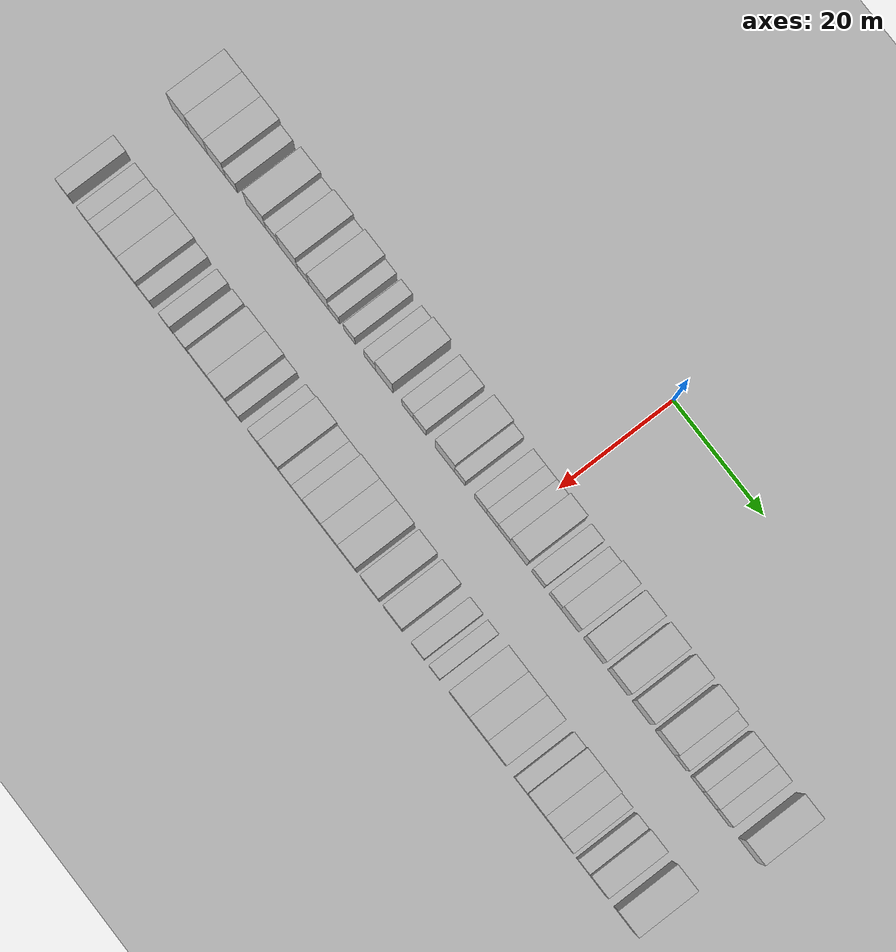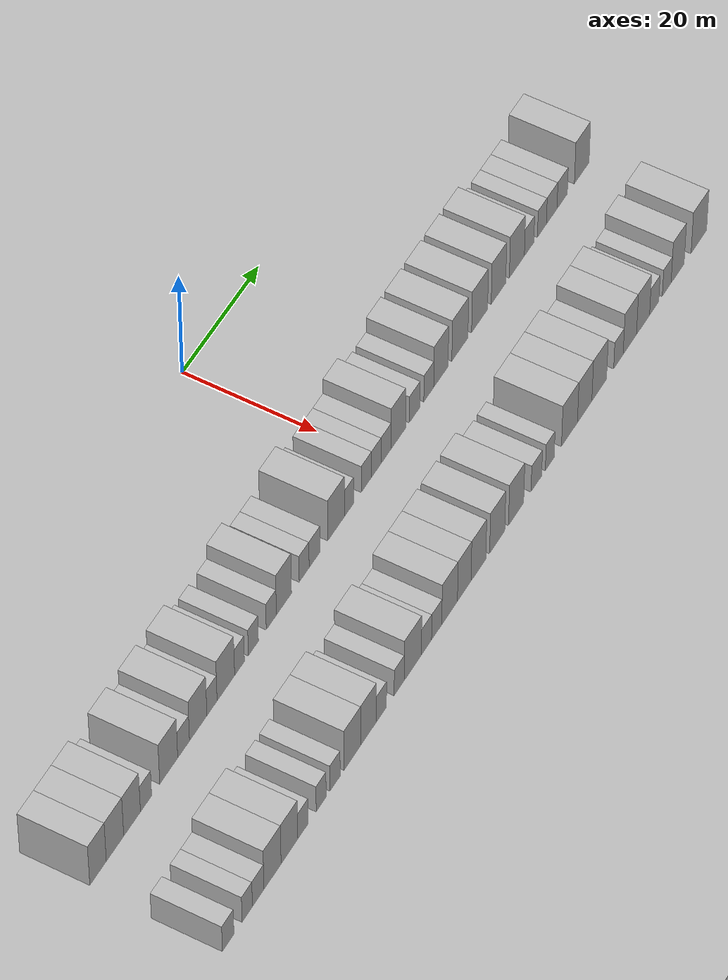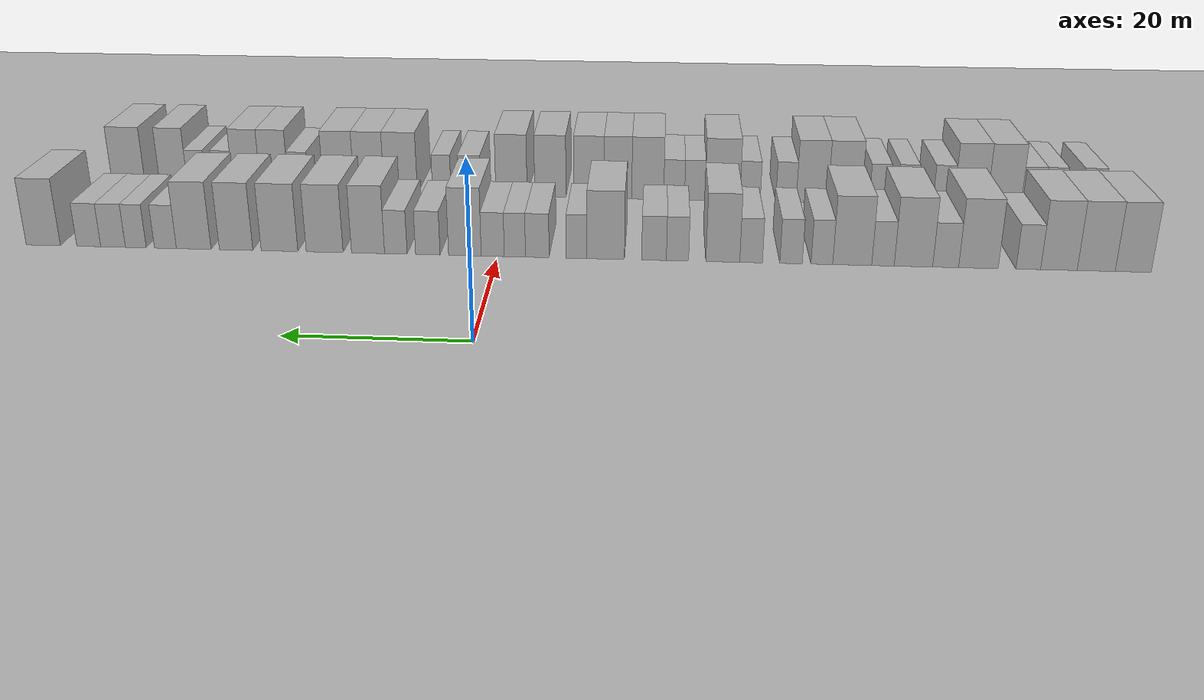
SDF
<sdf version="1.6">
 <world name="default">
  <include><name>ground_plane_1</name><uri>model://HANNAS_ground_plane</uri></include>
  <include>
   <name>ground_plane_2</name>
   <uri>model://HANNAS_ground_plane</uri>
   <pose>100 0 0  0 0 0</pose>
  </include>
  <model name="building_34">
   <static>1</static>
   <pose>25.0000 -72.7724 0 0.000000 0.000000 0.000000</pose>
   <link name="link">
    <pose>0 0 4.50 0 0 0</pose>
    <collision name="collision"><geometry><box><size>10.0000 4.0040 9.0000</size></box></geometry></collision>
    <visual name="visual">
     <cast_shadows>0</cast_shadows>
     <geometry><box><size>10.0000 4.0040 9.0000</size></box></geometry>
     <material>
      <script>
       <uri>model://HANNAS_wall/materials/scripts</uri>
       <uri>model://HANNAS_wall/materials/textures</uri>
       <name>vrc/HANNAS_wall</name>
      </script>
     </material>
    </visual>
   </link>
  </model>
  <model name="building_35">
   <static>1</static>
   <pose>25.0000 -68.6466 0 0.000000 0.000000 0.000000</pose>
   <link name="link">
    <pose>0 0 4.50 0 0 0</pose>
    <collision name="collision"><geometry><box><size>10.0000 4.2477 9.0000</size></box></geometry></collision>
    <visual name="visual">
     <cast_shadows>0</cast_shadows>
     <geometry><box><size>10.0000 4.2477 9.0000</size></box></geometry>
     <material>
      <script>
       <uri>model://HANNAS_wall/materials/scripts</uri>
       <uri>model://HANNAS_wall/materials/textures</uri>
       <name>vrc/HANNAS_wall</name>
      </script>
     </material>
    </visual>
   </link>
  </model>
  <model name="building_36">
   <static>1</static>
   <pose>25.0000 -64.4709 0 0.000000 0.000000 0.000000</pose>
   <link name="link">
    <pose>0 0 4.50 0 0 0</pose>
    <collision name="collision"><geometry><box><size>10.0000 4.1037 9.0000</size></box></geometry></collision>
    <visual name="visual">
     <cast_shadows>0</cast_shadows>
     <geometry><box><size>10.0000 4.1037 9.0000</size></box></geometry>
     <material>
      <script>
       <uri>model://HANNAS_wall/materials/scripts</uri>
       <uri>model://HANNAS_wall/materials/textures</uri>
       <name>vrc/HANNAS_wall</name>
      </script>
     </material>
    </visual>
   </link>
  </model>
  <model name="building_37">
   <static>1</static>
   <pose>25.0000 -61.0392 0 0.000000 0.000000 0.000000</pose>
   <link name="link">
    <pose>0 0 3.00 0 0 0</pose>
    <collision name="collision"><geometry><box><size>10.0000 2.7598 6.0000</size></box></geometry></collision>
    <visual name="visual">
     <cast_shadows>0</cast_shadows>
     <geometry><box><size>10.0000 2.7598 6.0000</size></box></geometry>
     <material>
      <script>
       <uri>model://HANNAS_wall/materials/scripts</uri>
       <uri>model://HANNAS_wall/materials/textures</uri>
       <name>vrc/HANNAS_wall</name>
      </script>
     </material>
    </visual>
   </link>
  </model>
  <model name="building_38">
   <static>1</static>
   <pose>25.0000 -55.4257 0 0.000000 0.000000 0.000000</pose>
   <link name="link">
    <pose>0 0 4.50 0 0 0</pose>
    <collision name="collision"><geometry><box><size>10.0000 4.4671 9.0000</size></box></geometry></collision>
    <visual name="visual">
     <cast_shadows>0</cast_shadows>
     <geometry><box><size>10.0000 4.4671 9.0000</size></box></geometry>
     <material>
      <script>
       <uri>model://HANNAS_wall/materials/scripts</uri>
       <uri>model://HANNAS_wall/materials/textures</uri>
       <name>vrc/HANNAS_wall</name>
      </script>
     </material>
    </visual>
   </link>
  </model>
  <model name="building_39">
   <static>1</static>
   <pose>25.0000 -51.7245 0 0.000000 0.000000 0.000000</pose>
   <link name="link">
    <pose>0 0 3.00 0 0 0</pose>
    <collision name="collision"><geometry><box><size>10.0000 2.9353 6.0000</size></box></geometry></collision>
    <visual name="visual">
     <cast_shadows>0</cast_shadows>
     <geometry><box><size>10.0000 2.9353 6.0000</size></box></geometry>
     <material>
      <script>
       <uri>model://HANNAS_wall/materials/scripts</uri>
       <uri>model://HANNAS_wall/materials/textures</uri>
       <name>vrc/HANNAS_wall</name>
      </script>
     </material>
    </visual>
   </link>
  </model>
  <model name="building_40">
   <static>1</static>
   <pose>25.0000 -48.0767 0 0.000000 0.000000 0.000000</pose>
   <link name="link">
    <pose>0 0 4.50 0 0 0</pose>
    <collision name="collision"><geometry><box><size>10.0000 4.3602 9.0000</size></box></geometry></collision>
    <visual name="visual">
     <cast_shadows>0</cast_shadows>
     <geometry><box><size>10.0000 4.3602 9.0000</size></box></geometry>
     <material>
      <script>
       <uri>model://HANNAS_wall/materials/scripts</uri>
       <uri>model://HANNAS_wall/materials/textures</uri>
       <name>vrc/HANNAS_wall</name>
      </script>
     </material>
    </visual>
   </link>
  </model>
  <model name="building_41">
   <static>1</static>
   <pose>25.0000 -44.6150 0 0.000000 0.000000 0.000000</pose>
   <link name="link">
    <pose>0 0 3.00 0 0 0</pose>
    <collision name="collision"><geometry><box><size>10.0000 2.5633 6.0000</size></box></geometry></collision>
    <visual name="visual">
     <cast_shadows>0</cast_shadows>
     <geometry><box><size>10.0000 2.5633 6.0000</size></box></geometry>
     <material>
      <script>
       <uri>model://HANNAS_wall/materials/scripts</uri>
       <uri>model://HANNAS_wall/materials/textures</uri>
       <name>vrc/HANNAS_wall</name>
      </script>
     </material>
    </visual>
   </link>
  </model>
  <model name="building_42">
   <static>1</static>
   <pose>25.0000 -41.1133 0 0.000000 0.000000 0.000000</pose>
   <link name="link">
    <pose>0 0 4.50 0 0 0</pose>
    <collision name="collision"><geometry><box><size>10.0000 4.4400 9.0000</size></box></geometry></collision>
    <visual name="visual">
     <cast_shadows>0</cast_shadows>
     <geometry><box><size>10.0000 4.4400 9.0000</size></box></geometry>
     <material>
      <script>
       <uri>model://HANNAS_wall/materials/scripts</uri>
       <uri>model://HANNAS_wall/materials/textures</uri>
       <name>vrc/HANNAS_wall</name>
      </script>
     </material>
    </visual>
   </link>
  </model>
  <model name="building_43">
   <static>1</static>
   <pose>25.0000 -37.6530 0 0.000000 0.000000 0.000000</pose>
   <link name="link">
    <pose>0 0 3.00 0 0 0</pose>
    <collision name="collision"><geometry><box><size>10.0000 2.4807 6.0000</size></box></geometry></collision>
    <visual name="visual">
     <cast_shadows>0</cast_shadows>
     <geometry><box><size>10.0000 2.4807 6.0000</size></box></geometry>
     <material>
      <script>
       <uri>model://HANNAS_wall/materials/scripts</uri>
       <uri>model://HANNAS_wall/materials/textures</uri>
       <name>vrc/HANNAS_wall</name>
      </script>
     </material>
    </visual>
   </link>
  </model>
  <model name="building_44">
   <static>1</static>
   <pose>25.0000 -34.1270 0 0.000000 0.000000 0.000000</pose>
   <link name="link">
    <pose>0 0 3.00 0 0 0</pose>
    <collision name="collision"><geometry><box><size>10.0000 2.5712 6.0000</size></box></geometry></collision>
    <visual name="visual">
     <cast_shadows>0</cast_shadows>
     <geometry><box><size>10.0000 2.5712 6.0000</size></box></geometry>
     <material>
      <script>
       <uri>model://HANNAS_wall/materials/scripts</uri>
       <uri>model://HANNAS_wall/materials/textures</uri>
       <name>vrc/HANNAS_wall</name>
      </script>
     </material>
    </visual>
   </link>
  </model>
  <model name="building_45">
   <static>1</static>
   <pose>25.0000 -29.5381 0 0.000000 0.000000 0.000000</pose>
   <link name="link">
    <pose>0 0 3.00 0 0 0</pose>
    <collision name="collision"><geometry><box><size>10.0000 2.6066 6.0000</size></box></geometry></collision>
    <visual name="visual">
     <cast_shadows>0</cast_shadows>
     <geometry><box><size>10.0000 2.6066 6.0000</size></box></geometry>
     <material>
      <script>
       <uri>model://HANNAS_wall/materials/scripts</uri>
       <uri>model://HANNAS_wall/materials/textures</uri>
       <name>vrc/HANNAS_wall</name>
      </script>
     </material>
    </visual>
   </link>
  </model>
  <model name="building_46">
   <static>1</static>
   <pose>25.0000 -26.2901 0 0.000000 0.000000 0.000000</pose>
   <link name="link">
    <pose>0 0 4.50 0 0 0</pose>
    <collision name="collision"><geometry><box><size>10.0000 3.8896 9.0000</size></box></geometry></collision>
    <visual name="visual">
     <cast_shadows>0</cast_shadows>
     <geometry><box><size>10.0000 3.8896 9.0000</size></box></geometry>
     <material>
      <script>
       <uri>model://HANNAS_wall/materials/scripts</uri>
       <uri>model://HANNAS_wall/materials/textures</uri>
       <name>vrc/HANNAS_wall</name>
      </script>
     </material>
    </visual>
   </link>
  </model>
  <model name="building_47">
   <static>1</static>
   <pose>25.0000 -21.0578 0 0.000000 0.000000 0.000000</pose>
   <link name="link">
    <pose>0 0 3.00 0 0 0</pose>
    <collision name="collision"><geometry><box><size>10.0000 2.5750 6.0000</size></box></geometry></collision>
    <visual name="visual">
     <cast_shadows>0</cast_shadows>
     <geometry><box><size>10.0000 2.5750 6.0000</size></box></geometry>
     <material>
      <script>
       <uri>model://HANNAS_wall/materials/scripts</uri>
       <uri>model://HANNAS_wall/materials/textures</uri>
       <name>vrc/HANNAS_wall</name>
      </script>
     </material>
    </visual>
   </link>
  </model>
  <model name="building_48">
   <static>1</static>
   <pose>25.0000 -18.3398 0 0.000000 0.000000 0.000000</pose>
   <link name="link">
    <pose>0 0 3.00 0 0 0</pose>
    <collision name="collision"><geometry><box><size>10.0000 2.8611 6.0000</size></box></geometry></collision>
    <visual name="visual">
     <cast_shadows>0</cast_shadows>
     <geometry><box><size>10.0000 2.8611 6.0000</size></box></geometry>
     <material>
      <script>
       <uri>model://HANNAS_wall/materials/scripts</uri>
       <uri>model://HANNAS_wall/materials/textures</uri>
       <name>vrc/HANNAS_wall</name>
      </script>
     </material>
    </visual>
   </link>
  </model>
  <model name="building_49">
   <static>1</static>
   <pose>25.0000 -12.7190 0 0.000000 0.000000 0.000000</pose>
   <link name="link">
    <pose>0 0 4.50 0 0 0</pose>
    <collision name="collision"><geometry><box><size>10.0000 4.3804 9.0000</size></box></geometry></collision>
    <visual name="visual">
     <cast_shadows>0</cast_shadows>
     <geometry><box><size>10.0000 4.3804 9.0000</size></box></geometry>
     <material>
      <script>
       <uri>model://HANNAS_wall/materials/scripts</uri>
       <uri>model://HANNAS_wall/materials/textures</uri>
       <name>vrc/HANNAS_wall</name>
      </script>
     </material>
    </visual>
   </link>
  </model>
  <model name="building_50">
   <static>1</static>
   <pose>25.0000 -9.3267 0 0.000000 0.000000 0.000000</pose>
   <link name="link">
    <pose>0 0 3.00 0 0 0</pose>
    <collision name="collision"><geometry><box><size>10.0000 2.4043 6.0000</size></box></geometry></collision>
    <visual name="visual">
     <cast_shadows>0</cast_shadows>
     <geometry><box><size>10.0000 2.4043 6.0000</size></box></geometry>
     <material>
      <script>
       <uri>model://HANNAS_wall/materials/scripts</uri>
       <uri>model://HANNAS_wall/materials/textures</uri>
       <name>vrc/HANNAS_wall</name>
      </script>
     </material>
    </visual>
   </link>
  </model>
  <model name="building_51">
   <static>1</static>
   <pose>25.0000 -4.7424 0 0.000000 0.000000 0.000000</pose>
   <link name="link">
    <pose>0 0 3.00 0 0 0</pose>
    <collision name="collision"><geometry><box><size>10.0000 2.7642 6.0000</size></box></geometry></collision>
    <visual name="visual">
     <cast_shadows>0</cast_shadows>
     <geometry><box><size>10.0000 2.7642 6.0000</size></box></geometry>
     <material>
      <script>
       <uri>model://HANNAS_wall/materials/scripts</uri>
       <uri>model://HANNAS_wall/materials/textures</uri>
       <name>vrc/HANNAS_wall</name>
      </script>
     </material>
    </visual>
   </link>
  </model>
  <model name="building_52">
   <static>1</static>
   <pose>25.0000 -2.1201 0 0.000000 0.000000 0.000000</pose>
   <link name="link">
    <pose>0 0 3.00 0 0 0</pose>
    <collision name="collision"><geometry><box><size>10.0000 2.4804 6.0000</size></box></geometry></collision>
    <visual name="visual">
     <cast_shadows>0</cast_shadows>
     <geometry><box><size>10.0000 2.4804 6.0000</size></box></geometry>
     <material>
      <script>
       <uri>model://HANNAS_wall/materials/scripts</uri>
       <uri>model://HANNAS_wall/materials/textures</uri>
       <name>vrc/HANNAS_wall</name>
      </script>
     </material>
    </visual>
   </link>
  </model>
  <model name="building_53">
   <static>1</static>
   <pose>25.0000 0.4747 0 0.000000 0.000000 0.000000</pose>
   <link name="link">
    <pose>0 0 3.00 0 0 0</pose>
    <collision name="collision"><geometry><box><size>10.0000 2.7091 6.0000</size></box></geometry></collision>
    <visual name="visual">
     <cast_shadows>0</cast_shadows>
     <geometry><box><size>10.0000 2.7091 6.0000</size></box></geometry>
     <material>
      <script>
       <uri>model://HANNAS_wall/materials/scripts</uri>
       <uri>model://HANNAS_wall/materials/textures</uri>
       <name>vrc/HANNAS_wall</name>
      </script>
     </material>
    </visual>
   </link>
  </model>
  <model name="building_54">
   <static>1</static>
   <pose>25.0000 3.7525 0 0.000000 0.000000 0.000000</pose>
   <link name="link">
    <pose>0 0 4.50 0 0 0</pose>
    <collision name="collision"><geometry><box><size>10.0000 3.8465 9.0000</size></box></geometry></collision>
    <visual name="visual">
     <cast_shadows>0</cast_shadows>
     <geometry><box><size>10.0000 3.8465 9.0000</size></box></geometry>
     <material>
      <script>
       <uri>model://HANNAS_wall/materials/scripts</uri>
       <uri>model://HANNAS_wall/materials/textures</uri>
       <name>vrc/HANNAS_wall</name>
      </script>
     </material>
    </visual>
   </link>
  </model>
  <model name="building_55">
   <static>1</static>
   <pose>25.0000 8.1223 0 0.000000 0.000000 0.000000</pose>
   <link name="link">
    <pose>0 0 3.00 0 0 0</pose>
    <collision name="collision"><geometry><box><size>10.0000 2.8932 6.0000</size></box></geometry></collision>
    <visual name="visual">
     <cast_shadows>0</cast_shadows>
     <geometry><box><size>10.0000 2.8932 6.0000</size></box></geometry>
     <material>
      <script>
       <uri>model://HANNAS_wall/materials/scripts</uri>
       <uri>model://HANNAS_wall/materials/textures</uri>
       <name>vrc/HANNAS_wall</name>
      </script>
     </material>
    </visual>
   </link>
  </model>
  <model name="building_56">
   <static>1</static>
   <pose>25.0000 11.9050 0 0.000000 0.000000 0.000000</pose>
   <link name="link">
    <pose>0 0 3.00 0 0 0</pose>
    <collision name="collision"><geometry><box><size>10.0000 2.6722 6.0000</size></box></geometry></collision>
    <visual name="visual">
     <cast_shadows>0</cast_shadows>
     <geometry><box><size>10.0000 2.6722 6.0000</size></box></geometry>
     <material>
      <script>
       <uri>model://HANNAS_wall/materials/scripts</uri>
       <uri>model://HANNAS_wall/materials/textures</uri>
       <name>vrc/HANNAS_wall</name>
      </script>
     </material>
    </visual>
   </link>
  </model>
  <model name="building_57">
   <static>1</static>
   <pose>25.0000 15.2048 0 0.000000 0.000000 0.000000</pose>
   <link name="link">
    <pose>0 0 4.50 0 0 0</pose>
    <collision name="collision"><geometry><box><size>10.0000 3.9273 9.0000</size></box></geometry></collision>
    <visual name="visual">
     <cast_shadows>0</cast_shadows>
     <geometry><box><size>10.0000 3.9273 9.0000</size></box></geometry>
     <material>
      <script>
       <uri>model://HANNAS_wall/materials/scripts</uri>
       <uri>model://HANNAS_wall/materials/textures</uri>
       <name>vrc/HANNAS_wall</name>
      </script>
     </material>
    </visual>
   </link>
  </model>
  <model name="building_58">
   <static>1</static>
   <pose>25.0000 20.3662 0 0.000000 0.000000 0.000000</pose>
   <link name="link">
    <pose>0 0 4.50 0 0 0</pose>
    <collision name="collision"><geometry><box><size>10.0000 4.3956 9.0000</size></box></geometry></collision>
    <visual name="visual">
     <cast_shadows>0</cast_shadows>
     <geometry><box><size>10.0000 4.3956 9.0000</size></box></geometry>
     <material>
      <script>
       <uri>model://HANNAS_wall/materials/scripts</uri>
       <uri>model://HANNAS_wall/materials/textures</uri>
       <name>vrc/HANNAS_wall</name>
      </script>
     </material>
    </visual>
   </link>
  </model>
  <model name="building_59">
   <static>1</static>
   <pose>25.0000 25.7597 0 0.000000 0.000000 0.000000</pose>
   <link name="link">
    <pose>0 0 4.50 0 0 0</pose>
    <collision name="collision"><geometry><box><size>10.0000 4.3914 9.0000</size></box></geometry></collision>
    <visual name="visual">
     <cast_shadows>0</cast_shadows>
     <geometry><box><size>10.0000 4.3914 9.0000</size></box></geometry>
     <material>
      <script>
       <uri>model://HANNAS_wall/materials/scripts</uri>
       <uri>model://HANNAS_wall/materials/textures</uri>
       <name>vrc/HANNAS_wall</name>
      </script>
     </material>
    </visual>
   </link>
  </model>
  <model name="building_60">
   <static>1</static>
   <pose>25.0000 30.9667 0 0.000000 0.000000 0.000000</pose>
   <link name="link">
    <pose>0 0 4.50 0 0 0</pose>
    <collision name="collision"><geometry><box><size>10.0000 4.0226 9.0000</size></box></geometry></collision>
    <visual name="visual">
     <cast_shadows>0</cast_shadows>
     <geometry><box><size>10.0000 4.0226 9.0000</size></box></geometry>
     <material>
      <script>
       <uri>model://HANNAS_wall/materials/scripts</uri>
       <uri>model://HANNAS_wall/materials/textures</uri>
       <name>vrc/HANNAS_wall</name>
      </script>
     </material>
    </visual>
   </link>
  </model>
  <model name="building_61">
   <static>1</static>
   <pose>25.0000 36.0708 0 0.000000 0.000000 0.000000</pose>
   <link name="link">
    <pose>0 0 4.50 0 0 0</pose>
    <collision name="collision"><geometry><box><size>10.0000 4.1858 9.0000</size></box></geometry></collision>
    <visual name="visual">
     <cast_shadows>0</cast_shadows>
     <geometry><box><size>10.0000 4.1858 9.0000</size></box></geometry>
     <material>
      <script>
       <uri>model://HANNAS_wall/materials/scripts</uri>
       <uri>model://HANNAS_wall/materials/textures</uri>
       <name>vrc/HANNAS_wall</name>
      </script>
     </material>
    </visual>
   </link>
  </model>
  <model name="building_62">
   <static>1</static>
   <pose>25.0000 39.4881 0 0.000000 0.000000 0.000000</pose>
   <link name="link">
    <pose>0 0 3.00 0 0 0</pose>
    <collision name="collision"><geometry><box><size>10.0000 2.6488 6.0000</size></box></geometry></collision>
    <visual name="visual">
     <cast_shadows>0</cast_shadows>
     <geometry><box><size>10.0000 2.6488 6.0000</size></box></geometry>
     <material>
      <script>
       <uri>model://HANNAS_wall/materials/scripts</uri>
       <uri>model://HANNAS_wall/materials/textures</uri>
       <name>vrc/HANNAS_wall</name>
      </script>
     </material>
    </visual>
   </link>
  </model>
  <model name="building_63">
   <static>1</static>
   <pose>25.0000 43.0726 0 0.000000 0.000000 0.000000</pose>
   <link name="link">
    <pose>0 0 3.00 0 0 0</pose>
    <collision name="collision"><geometry><box><size>10.0000 2.5201 6.0000</size></box></geometry></collision>
    <visual name="visual">
     <cast_shadows>0</cast_shadows>
     <geometry><box><size>10.0000 2.5201 6.0000</size></box></geometry>
     <material>
      <script>
       <uri>model://HANNAS_wall/materials/scripts</uri>
       <uri>model://HANNAS_wall/materials/textures</uri>
       <name>vrc/HANNAS_wall</name>
      </script>
     </material>
    </visual>
   </link>
  </model>
  <model name="building_64">
   <static>1</static>
   <pose>25.0000 45.8305 0 0.000000 0.000000 0.000000</pose>
   <link name="link">
    <pose>0 0 3.00 0 0 0</pose>
    <collision name="collision"><geometry><box><size>10.0000 2.9956 6.0000</size></box></geometry></collision>
    <visual name="visual">
     <cast_shadows>0</cast_shadows>
     <geometry><box><size>10.0000 2.9956 6.0000</size></box></geometry>
     <material>
      <script>
       <uri>model://HANNAS_wall/materials/scripts</uri>
       <uri>model://HANNAS_wall/materials/textures</uri>
       <name>vrc/HANNAS_wall</name>
      </script>
     </material>
    </visual>
   </link>
  </model>
  <model name="building_65">
   <static>1</static>
   <pose>25.0000 48.7820 0 0.000000 0.000000 0.000000</pose>
   <link name="link">
    <pose>0 0 3.00 0 0 0</pose>
    <collision name="collision"><geometry><box><size>10.0000 2.9074 6.0000</size></box></geometry></collision>
    <visual name="visual">
     <cast_shadows>0</cast_shadows>
     <geometry><box><size>10.0000 2.9074 6.0000</size></box></geometry>
     <material>
      <script>
       <uri>model://HANNAS_wall/materials/scripts</uri>
       <uri>model://HANNAS_wall/materials/textures</uri>
       <name>vrc/HANNAS_wall</name>
      </script>
     </material>
    </visual>
   </link>
  </model>
  <model name="building_66">
   <static>1</static>
   <pose>25.0000 54.3205 0 0.000000 0.000000 0.000000</pose>
   <link name="link">
    <pose>0 0 4.50 0 0 0</pose>
    <collision name="collision"><geometry><box><size>10.0000 4.1696 9.0000</size></box></geometry></collision>
    <visual name="visual">
     <cast_shadows>0</cast_shadows>
     <geometry><box><size>10.0000 4.1696 9.0000</size></box></geometry>
     <material>
      <script>
       <uri>model://HANNAS_wall/materials/scripts</uri>
       <uri>model://HANNAS_wall/materials/textures</uri>
       <name>vrc/HANNAS_wall</name>
      </script>
     </material>
    </visual>
   </link>
  </model>
  <model name="building_133">
   <static>1</static>
   <pose>44.0000 -73.8379 0 0.000000 0.000000 0.000000</pose>
   <link name="link">
    <pose>0 0 3.00 0 0 0</pose>
    <collision name="collision"><geometry><box><size>10.0000 2.8449 6.0000</size></box></geometry></collision>
    <visual name="visual">
     <cast_shadows>0</cast_shadows>
     <geometry><box><size>10.0000 2.8449 6.0000</size></box></geometry>
     <material>
      <script>
       <uri>model://HANNAS_wall/materials/scripts</uri>
       <uri>model://HANNAS_wall/materials/textures</uri>
       <name>vrc/HANNAS_wall</name>
      </script>
     </material>
    </visual>
   </link>
  </model>
  <model name="building_134">
   <static>1</static>
   <pose>44.0000 -69.1358 0 0.000000 0.000000 0.000000</pose>
   <link name="link">
    <pose>0 0 3.00 0 0 0</pose>
    <collision name="collision"><geometry><box><size>10.0000 2.5591 6.0000</size></box></geometry></collision>
    <visual name="visual">
     <cast_shadows>0</cast_shadows>
     <geometry><box><size>10.0000 2.5591 6.0000</size></box></geometry>
     <material>
      <script>
       <uri>model://HANNAS_wall/materials/scripts</uri>
       <uri>model://HANNAS_wall/materials/textures</uri>
       <name>vrc/HANNAS_wall</name>
      </script>
     </material>
    </visual>
   </link>
  </model>
  <model name="building_135">
   <static>1</static>
   <pose>44.0000 -66.4230 0 0.000000 0.000000 0.000000</pose>
   <link name="link">
    <pose>0 0 3.00 0 0 0</pose>
    <collision name="collision"><geometry><box><size>10.0000 2.8665 6.0000</size></box></geometry></collision>
    <visual name="visual">
     <cast_shadows>0</cast_shadows>
     <geometry><box><size>10.0000 2.8665 6.0000</size></box></geometry>
     <material>
      <script>
       <uri>model://HANNAS_wall/materials/scripts</uri>
       <uri>model://HANNAS_wall/materials/textures</uri>
       <name>vrc/HANNAS_wall</name>
      </script>
     </material>
    </visual>
   </link>
  </model>
  <model name="building_136">
   <static>1</static>
   <pose>44.0000 -62.8533 0 0.000000 0.000000 0.000000</pose>
   <link name="link">
    <pose>0 0 4.50 0 0 0</pose>
    <collision name="collision"><geometry><box><size>10.0000 4.2729 9.0000</size></box></geometry></collision>
    <visual name="visual">
     <cast_shadows>0</cast_shadows>
     <geometry><box><size>10.0000 4.2729 9.0000</size></box></geometry>
     <material>
      <script>
       <uri>model://HANNAS_wall/materials/scripts</uri>
       <uri>model://HANNAS_wall/materials/textures</uri>
       <name>vrc/HANNAS_wall</name>
      </script>
     </material>
    </visual>
   </link>
  </model>
  <model name="building_137">
   <static>1</static>
   <pose>44.0000 -58.6171 0 0.000000 0.000000 0.000000</pose>
   <link name="link">
    <pose>0 0 4.50 0 0 0</pose>
    <collision name="collision"><geometry><box><size>10.0000 4.1994 9.0000</size></box></geometry></collision>
    <visual name="visual">
     <cast_shadows>0</cast_shadows>
     <geometry><box><size>10.0000 4.1994 9.0000</size></box></geometry>
     <material>
      <script>
       <uri>model://HANNAS_wall/materials/scripts</uri>
       <uri>model://HANNAS_wall/materials/textures</uri>
       <name>vrc/HANNAS_wall</name>
      </script>
     </material>
    </visual>
   </link>
  </model>
  <model name="building_138">
   <static>1</static>
   <pose>44.0000 -55.1983 0 0.000000 0.000000 0.000000</pose>
   <link name="link">
    <pose>0 0 3.00 0 0 0</pose>
    <collision name="collision"><geometry><box><size>10.0000 2.6381 6.0000</size></box></geometry></collision>
    <visual name="visual">
     <cast_shadows>0</cast_shadows>
     <geometry><box><size>10.0000 2.6381 6.0000</size></box></geometry>
     <material>
      <script>
       <uri>model://HANNAS_wall/materials/scripts</uri>
       <uri>model://HANNAS_wall/materials/textures</uri>
       <name>vrc/HANNAS_wall</name>
      </script>
     </material>
    </visual>
   </link>
  </model>
  <model name="building_139">
   <static>1</static>
   <pose>44.0000 -50.6225 0 0.000000 0.000000 0.000000</pose>
   <link name="link">
    <pose>0 0 3.00 0 0 0</pose>
    <collision name="collision"><geometry><box><size>10.0000 2.5136 6.0000</size></box></geometry></collision>
    <visual name="visual">
     <cast_shadows>0</cast_shadows>
     <geometry><box><size>10.0000 2.5136 6.0000</size></box></geometry>
     <material>
      <script>
       <uri>model://HANNAS_wall/materials/scripts</uri>
       <uri>model://HANNAS_wall/materials/textures</uri>
       <name>vrc/HANNAS_wall</name>
      </script>
     </material>
    </visual>
   </link>
  </model>
  <model name="building_140">
   <static>1</static>
   <pose>44.0000 -47.0792 0 0.000000 0.000000 0.000000</pose>
   <link name="link">
    <pose>0 0 3.00 0 0 0</pose>
    <collision name="collision"><geometry><box><size>10.0000 2.5729 6.0000</size></box></geometry></collision>
    <visual name="visual">
     <cast_shadows>0</cast_shadows>
     <geometry><box><size>10.0000 2.5729 6.0000</size></box></geometry>
     <material>
      <script>
       <uri>model://HANNAS_wall/materials/scripts</uri>
       <uri>model://HANNAS_wall/materials/textures</uri>
       <name>vrc/HANNAS_wall</name>
      </script>
     </material>
    </visual>
   </link>
  </model>
  <model name="building_141">
   <static>1</static>
   <pose>44.0000 -42.6649 0 0.000000 0.000000 0.000000</pose>
   <link name="link">
    <pose>0 0 4.50 0 0 0</pose>
    <collision name="collision"><geometry><box><size>10.0000 4.2557 9.0000</size></box></geometry></collision>
    <visual name="visual">
     <cast_shadows>0</cast_shadows>
     <geometry><box><size>10.0000 4.2557 9.0000</size></box></geometry>
     <material>
      <script>
       <uri>model://HANNAS_wall/materials/scripts</uri>
       <uri>model://HANNAS_wall/materials/textures</uri>
       <name>vrc/HANNAS_wall</name>
      </script>
     </material>
    </visual>
   </link>
  </model>
  <model name="building_142">
   <static>1</static>
   <pose>44.0000 -38.5177 0 0.000000 0.000000 0.000000</pose>
   <link name="link">
    <pose>0 0 4.50 0 0 0</pose>
    <collision name="collision"><geometry><box><size>10.0000 4.0386 9.0000</size></box></geometry></collision>
    <visual name="visual">
     <cast_shadows>0</cast_shadows>
     <geometry><box><size>10.0000 4.0386 9.0000</size></box></geometry>
     <material>
      <script>
       <uri>model://HANNAS_wall/materials/scripts</uri>
       <uri>model://HANNAS_wall/materials/textures</uri>
       <name>vrc/HANNAS_wall</name>
      </script>
     </material>
    </visual>
   </link>
  </model>
  <model name="building_143">
   <static>1</static>
   <pose>44.0000 -35.1917 0 0.000000 0.000000 0.000000</pose>
   <link name="link">
    <pose>0 0 3.00 0 0 0</pose>
    <collision name="collision"><geometry><box><size>10.0000 2.6135 6.0000</size></box></geometry></collision>
    <visual name="visual">
     <cast_shadows>0</cast_shadows>
     <geometry><box><size>10.0000 2.6135 6.0000</size></box></geometry>
     <material>
      <script>
       <uri>model://HANNAS_wall/materials/scripts</uri>
       <uri>model://HANNAS_wall/materials/textures</uri>
       <name>vrc/HANNAS_wall</name>
      </script>
     </material>
    </visual>
   </link>
  </model>
  <model name="building_144">
   <static>1</static>
   <pose>44.0000 -30.5733 0 0.000000 0.000000 0.000000</pose>
   <link name="link">
    <pose>0 0 3.00 0 0 0</pose>
    <collision name="collision"><geometry><box><size>10.0000 2.6234 6.0000</size></box></geometry></collision>
    <visual name="visual">
     <cast_shadows>0</cast_shadows>
     <geometry><box><size>10.0000 2.6234 6.0000</size></box></geometry>
     <material>
      <script>
       <uri>model://HANNAS_wall/materials/scripts</uri>
       <uri>model://HANNAS_wall/materials/textures</uri>
       <name>vrc/HANNAS_wall</name>
      </script>
     </material>
    </visual>
   </link>
  </model>
  <model name="building_145">
   <static>1</static>
   <pose>44.0000 -27.0185 0 0.000000 0.000000 0.000000</pose>
   <link name="link">
    <pose>0 0 4.50 0 0 0</pose>
    <collision name="collision"><geometry><box><size>10.0000 4.4863 9.0000</size></box></geometry></collision>
    <visual name="visual">
     <cast_shadows>0</cast_shadows>
     <geometry><box><size>10.0000 4.4863 9.0000</size></box></geometry>
     <material>
      <script>
       <uri>model://HANNAS_wall/materials/scripts</uri>
       <uri>model://HANNAS_wall/materials/textures</uri>
       <name>vrc/HANNAS_wall</name>
      </script>
     </material>
    </visual>
   </link>
  </model>
  <model name="building_146">
   <static>1</static>
   <pose>44.0000 -23.4504 0 0.000000 0.000000 0.000000</pose>
   <link name="link">
    <pose>0 0 3.00 0 0 0</pose>
    <collision name="collision"><geometry><box><size>10.0000 2.6498 6.0000</size></box></geometry></collision>
    <visual name="visual">
     <cast_shadows>0</cast_shadows>
     <geometry><box><size>10.0000 2.6498 6.0000</size></box></geometry>
     <material>
      <script>
       <uri>model://HANNAS_wall/materials/scripts</uri>
       <uri>model://HANNAS_wall/materials/textures</uri>
       <name>vrc/HANNAS_wall</name>
      </script>
     </material>
    </visual>
   </link>
  </model>
  <model name="building_147">
   <static>1</static>
   <pose>44.0000 -20.7742 0 0.000000 0.000000 0.000000</pose>
   <link name="link">
    <pose>0 0 3.00 0 0 0</pose>
    <collision name="collision"><geometry><box><size>10.0000 2.7028 6.0000</size></box></geometry></collision>
    <visual name="visual">
     <cast_shadows>0</cast_shadows>
     <geometry><box><size>10.0000 2.7028 6.0000</size></box></geometry>
     <material>
      <script>
       <uri>model://HANNAS_wall/materials/scripts</uri>
       <uri>model://HANNAS_wall/materials/textures</uri>
       <name>vrc/HANNAS_wall</name>
      </script>
     </material>
    </visual>
   </link>
  </model>
  <model name="building_148">
   <static>1</static>
   <pose>44.0000 -17.3529 0 0.000000 0.000000 0.000000</pose>
   <link name="link">
    <pose>0 0 4.50 0 0 0</pose>
    <collision name="collision"><geometry><box><size>10.0000 4.1398 9.0000</size></box></geometry></collision>
    <visual name="visual">
     <cast_shadows>0</cast_shadows>
     <geometry><box><size>10.0000 4.1398 9.0000</size></box></geometry>
     <material>
      <script>
       <uri>model://HANNAS_wall/materials/scripts</uri>
       <uri>model://HANNAS_wall/materials/textures</uri>
       <name>vrc/HANNAS_wall</name>
      </script>
     </material>
    </visual>
   </link>
  </model>
  <model name="building_149">
   <static>1</static>
   <pose>44.0000 -13.4783 0 0.000000 0.000000 0.000000</pose>
   <link name="link">
    <pose>0 0 4.50 0 0 0</pose>
    <collision name="collision"><geometry><box><size>10.0000 3.6094 9.0000</size></box></geometry></collision>
    <visual name="visual">
     <cast_shadows>0</cast_shadows>
     <geometry><box><size>10.0000 3.6094 9.0000</size></box></geometry>
     <material>
      <script>
       <uri>model://HANNAS_wall/materials/scripts</uri>
       <uri>model://HANNAS_wall/materials/textures</uri>
       <name>vrc/HANNAS_wall</name>
      </script>
     </material>
    </visual>
   </link>
  </model>
  <model name="building_150">
   <static>1</static>
   <pose>44.0000 -9.6938 0 0.000000 0.000000 0.000000</pose>
   <link name="link">
    <pose>0 0 4.50 0 0 0</pose>
    <collision name="collision"><geometry><box><size>10.0000 3.9596 9.0000</size></box></geometry></collision>
    <visual name="visual">
     <cast_shadows>0</cast_shadows>
     <geometry><box><size>10.0000 3.9596 9.0000</size></box></geometry>
     <material>
      <script>
       <uri>model://HANNAS_wall/materials/scripts</uri>
       <uri>model://HANNAS_wall/materials/textures</uri>
       <name>vrc/HANNAS_wall</name>
      </script>
     </material>
    </visual>
   </link>
  </model>
  <model name="building_151">
   <static>1</static>
   <pose>44.0000 -4.6762 0 0.000000 0.000000 0.000000</pose>
   <link name="link">
    <pose>0 0 4.50 0 0 0</pose>
    <collision name="collision"><geometry><box><size>10.0000 4.0756 9.0000</size></box></geometry></collision>
    <visual name="visual">
     <cast_shadows>0</cast_shadows>
     <geometry><box><size>10.0000 4.0756 9.0000</size></box></geometry>
     <material>
      <script>
       <uri>model://HANNAS_wall/materials/scripts</uri>
       <uri>model://HANNAS_wall/materials/textures</uri>
       <name>vrc/HANNAS_wall</name>
      </script>
     </material>
    </visual>
   </link>
  </model>
  <model name="building_152">
   <static>1</static>
   <pose>44.0000 0.4124 0 0.000000 0.000000 0.000000</pose>
   <link name="link">
    <pose>0 0 4.50 0 0 0</pose>
    <collision name="collision"><geometry><box><size>10.0000 4.1017 9.0000</size></box></geometry></collision>
    <visual name="visual">
     <cast_shadows>0</cast_shadows>
     <geometry><box><size>10.0000 4.1017 9.0000</size></box></geometry>
     <material>
      <script>
       <uri>model://HANNAS_wall/materials/scripts</uri>
       <uri>model://HANNAS_wall/materials/textures</uri>
       <name>vrc/HANNAS_wall</name>
      </script>
     </material>
    </visual>
   </link>
  </model>
  <model name="building_153">
   <static>1</static>
   <pose>44.0000 5.9114 0 0.000000 0.000000 0.000000</pose>
   <link name="link">
    <pose>0 0 3.00 0 0 0</pose>
    <collision name="collision"><geometry><box><size>10.0000 2.8961 6.0000</size></box></geometry></collision>
    <visual name="visual">
     <cast_shadows>0</cast_shadows>
     <geometry><box><size>10.0000 2.8961 6.0000</size></box></geometry>
     <material>
      <script>
       <uri>model://HANNAS_wall/materials/scripts</uri>
       <uri>model://HANNAS_wall/materials/textures</uri>
       <name>vrc/HANNAS_wall</name>
      </script>
     </material>
    </visual>
   </link>
  </model>
  <model name="building_154">
   <static>1</static>
   <pose>44.0000 9.5733 0 0.000000 0.000000 0.000000</pose>
   <link name="link">
    <pose>0 0 3.00 0 0 0</pose>
    <collision name="collision"><geometry><box><size>10.0000 2.4277 6.0000</size></box></geometry></collision>
    <visual name="visual">
     <cast_shadows>0</cast_shadows>
     <geometry><box><size>10.0000 2.4277 6.0000</size></box></geometry>
     <material>
      <script>
       <uri>model://HANNAS_wall/materials/scripts</uri>
       <uri>model://HANNAS_wall/materials/textures</uri>
       <name>vrc/HANNAS_wall</name>
      </script>
     </material>
    </visual>
   </link>
  </model>
  <model name="building_155">
   <static>1</static>
   <pose>44.0000 14.9848 0 0.000000 0.000000 0.000000</pose>
   <link name="link">
    <pose>0 0 4.50 0 0 0</pose>
    <collision name="collision"><geometry><box><size>10.0000 4.3953 9.0000</size></box></geometry></collision>
    <visual name="visual">
     <cast_shadows>0</cast_shadows>
     <geometry><box><size>10.0000 4.3953 9.0000</size></box></geometry>
     <material>
      <script>
       <uri>model://HANNAS_wall/materials/scripts</uri>
       <uri>model://HANNAS_wall/materials/textures</uri>
       <name>vrc/HANNAS_wall</name>
      </script>
     </material>
    </visual>
   </link>
  </model>
  <model name="building_156">
   <static>1</static>
   <pose>44.0000 19.1760 0 0.000000 0.000000 0.000000</pose>
   <link name="link">
    <pose>0 0 4.50 0 0 0</pose>
    <collision name="collision"><geometry><box><size>10.0000 3.9872 9.0000</size></box></geometry></collision>
    <visual name="visual">
     <cast_shadows>0</cast_shadows>
     <geometry><box><size>10.0000 3.9872 9.0000</size></box></geometry>
     <material>
      <script>
       <uri>model://HANNAS_wall/materials/scripts</uri>
       <uri>model://HANNAS_wall/materials/textures</uri>
       <name>vrc/HANNAS_wall</name>
      </script>
     </material>
    </visual>
   </link>
  </model>
  <model name="building_157">
   <static>1</static>
   <pose>44.0000 23.2111 0 0.000000 0.000000 0.000000</pose>
   <link name="link">
    <pose>0 0 4.50 0 0 0</pose>
    <collision name="collision"><geometry><box><size>10.0000 4.0830 9.0000</size></box></geometry></collision>
    <visual name="visual">
     <cast_shadows>0</cast_shadows>
     <geometry><box><size>10.0000 4.0830 9.0000</size></box></geometry>
     <material>
      <script>
       <uri>model://HANNAS_wall/materials/scripts</uri>
       <uri>model://HANNAS_wall/materials/textures</uri>
       <name>vrc/HANNAS_wall</name>
      </script>
     </material>
    </visual>
   </link>
  </model>
  <model name="building_158">
   <static>1</static>
   <pose>44.0000 28.5770 0 0.000000 0.000000 0.000000</pose>
   <link name="link">
    <pose>0 0 3.00 0 0 0</pose>
    <collision name="collision"><geometry><box><size>10.0000 2.6488 6.0000</size></box></geometry></collision>
    <visual name="visual">
     <cast_shadows>0</cast_shadows>
     <geometry><box><size>10.0000 2.6488 6.0000</size></box></geometry>
     <material>
      <script>
       <uri>model://HANNAS_wall/materials/scripts</uri>
       <uri>model://HANNAS_wall/materials/textures</uri>
       <name>vrc/HANNAS_wall</name>
      </script>
     </material>
    </visual>
   </link>
  </model>
  <model name="building_159">
   <static>1</static>
   <pose>44.0000 31.7733 0 0.000000 0.000000 0.000000</pose>
   <link name="link">
    <pose>0 0 4.50 0 0 0</pose>
    <collision name="collision"><geometry><box><size>10.0000 3.7437 9.0000</size></box></geometry></collision>
    <visual name="visual">
     <cast_shadows>0</cast_shadows>
     <geometry><box><size>10.0000 3.7437 9.0000</size></box></geometry>
     <material>
      <script>
       <uri>model://HANNAS_wall/materials/scripts</uri>
       <uri>model://HANNAS_wall/materials/textures</uri>
       <name>vrc/HANNAS_wall</name>
      </script>
     </material>
    </visual>
   </link>
  </model>
  <model name="building_160">
   <static>1</static>
   <pose>44.0000 35.4965 0 0.000000 0.000000 0.000000</pose>
   <link name="link">
    <pose>0 0 4.50 0 0 0</pose>
    <collision name="collision"><geometry><box><size>10.0000 3.7026 9.0000</size></box></geometry></collision>
    <visual name="visual">
     <cast_shadows>0</cast_shadows>
     <geometry><box><size>10.0000 3.7026 9.0000</size></box></geometry>
     <material>
      <script>
       <uri>model://HANNAS_wall/materials/scripts</uri>
       <uri>model://HANNAS_wall/materials/textures</uri>
       <name>vrc/HANNAS_wall</name>
      </script>
     </material>
    </visual>
   </link>
  </model>
  <model name="building_161">
   <static>1</static>
   <pose>44.0000 38.6524 0 0.000000 0.000000 0.000000</pose>
   <link name="link">
    <pose>0 0 3.00 0 0 0</pose>
    <collision name="collision"><geometry><box><size>10.0000 2.6094 6.0000</size></box></geometry></collision>
    <visual name="visual">
     <cast_shadows>0</cast_shadows>
     <geometry><box><size>10.0000 2.6094 6.0000</size></box></geometry>
     <material>
      <script>
       <uri>model://HANNAS_wall/materials/scripts</uri>
       <uri>model://HANNAS_wall/materials/textures</uri>
       <name>vrc/HANNAS_wall</name>
      </script>
     </material>
    </visual>
   </link>
  </model>
  <model name="building_162">
   <static>1</static>
   <pose>44.0000 42.2108 0 0.000000 0.000000 0.000000</pose>
   <link name="link">
    <pose>0 0 3.00 0 0 0</pose>
    <collision name="collision"><geometry><box><size>10.0000 2.5073 6.0000</size></box></geometry></collision>
    <visual name="visual">
     <cast_shadows>0</cast_shadows>
     <geometry><box><size>10.0000 2.5073 6.0000</size></box></geometry>
     <material>
      <script>
       <uri>model://HANNAS_wall/materials/scripts</uri>
       <uri>model://HANNAS_wall/materials/textures</uri>
       <name>vrc/HANNAS_wall</name>
      </script>
     </material>
    </visual>
   </link>
  </model>
  <model name="building_163">
   <static>1</static>
   <pose>44.0000 45.3224 0 0.000000 0.000000 0.000000</pose>
   <link name="link">
    <pose>0 0 4.50 0 0 0</pose>
    <collision name="collision"><geometry><box><size>10.0000 3.7159 9.0000</size></box></geometry></collision>
    <visual name="visual">
     <cast_shadows>0</cast_shadows>
     <geometry><box><size>10.0000 3.7159 9.0000</size></box></geometry>
     <material>
      <script>
       <uri>model://HANNAS_wall/materials/scripts</uri>
       <uri>model://HANNAS_wall/materials/textures</uri>
       <name>vrc/HANNAS_wall</name>
      </script>
     </material>
    </visual>
   </link>
  </model>
  <model name="building_164">
   <static>1</static>
   <pose>44.0000 51.4069 0 0.000000 0.000000 0.000000</pose>
   <link name="link">
    <pose>0 0 4.50 0 0 0</pose>
    <collision name="collision"><geometry><box><size>10.0000 4.4530 9.0000</size></box></geometry></collision>
    <visual name="visual">
     <cast_shadows>0</cast_shadows>
     <geometry><box><size>10.0000 4.4530 9.0000</size></box></geometry>
     <material>
      <script>
       <uri>model://HANNAS_wall/materials/scripts</uri>
       <uri>model://HANNAS_wall/materials/textures</uri>
       <name>vrc/HANNAS_wall</name>
      </script>
     </material>
    </visual>
   </link>
  </model>
 </world>
</sdf>
